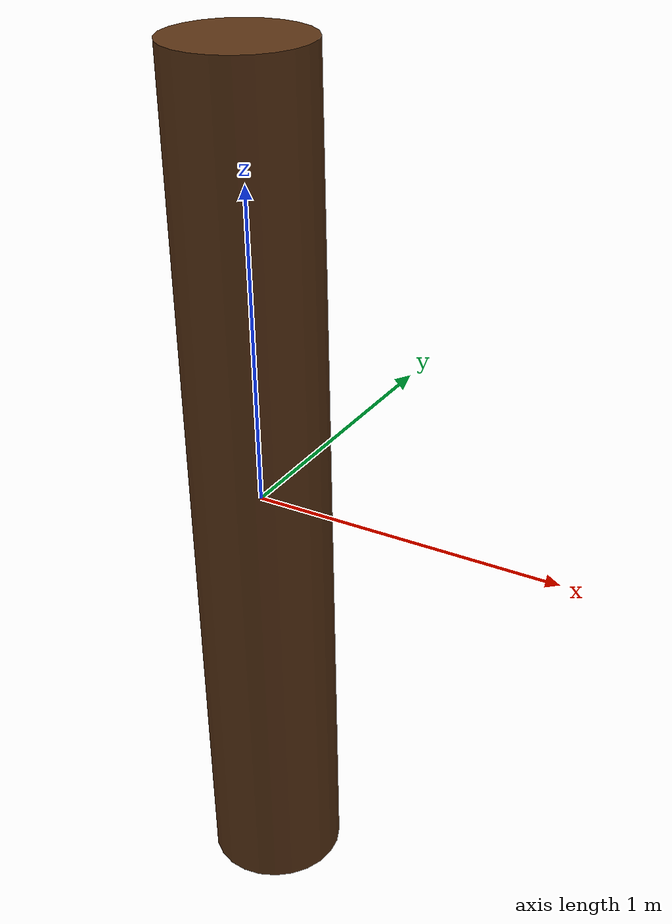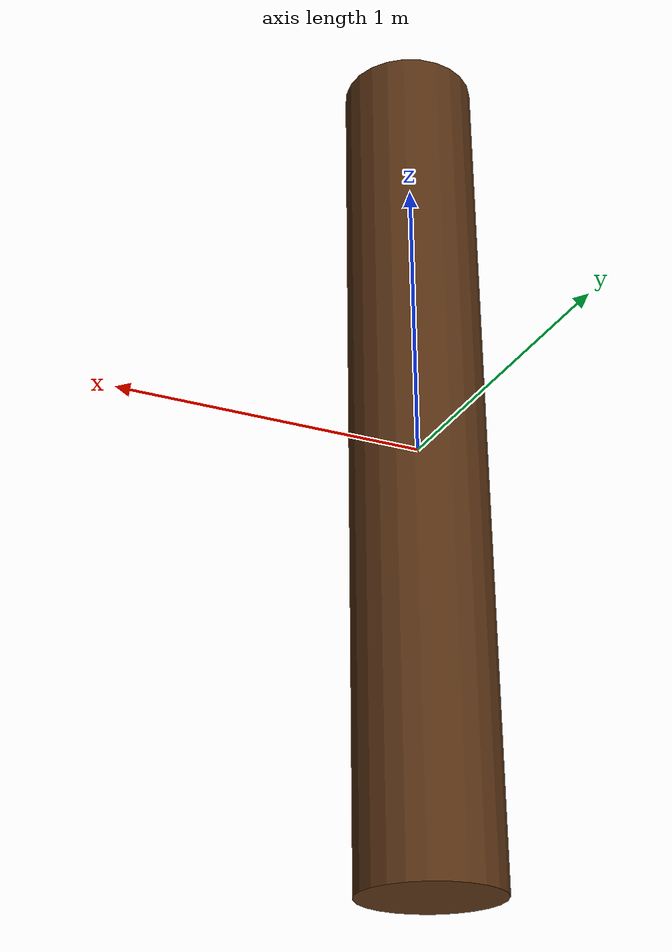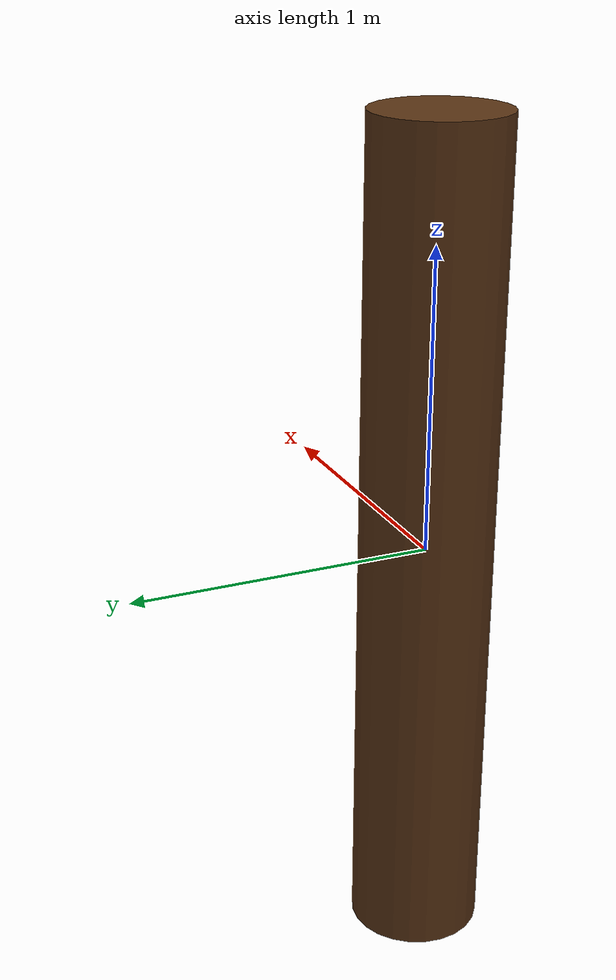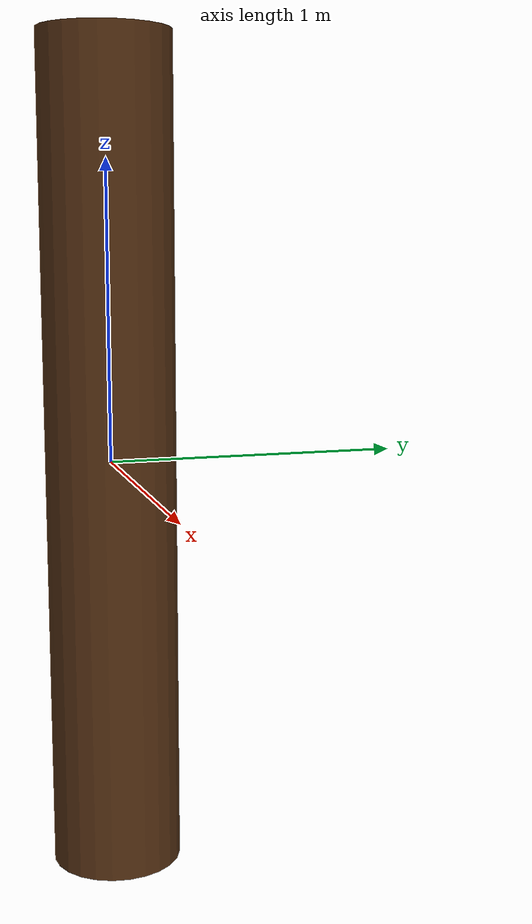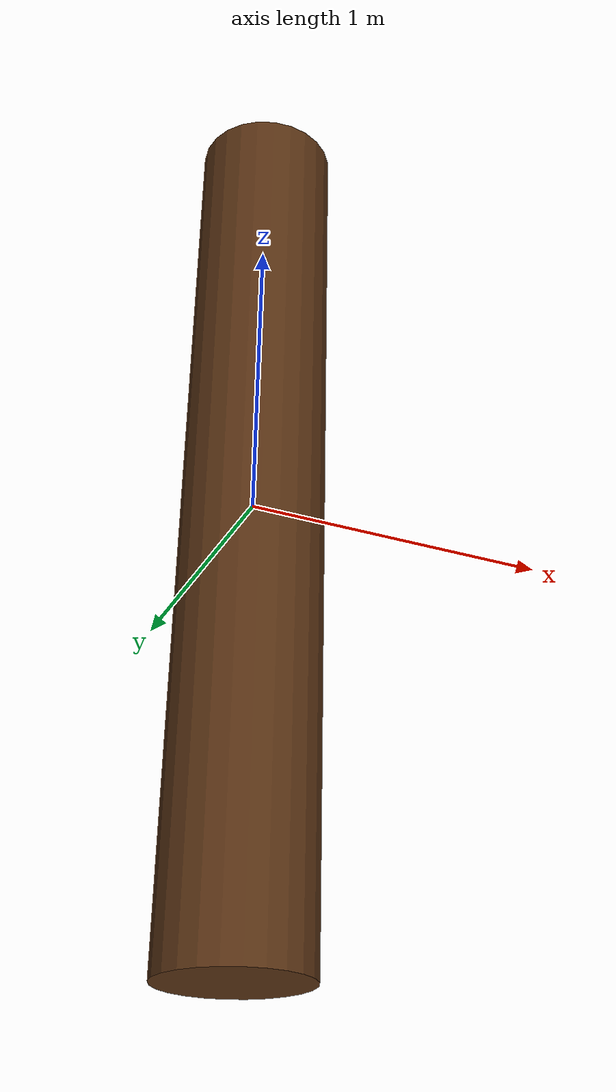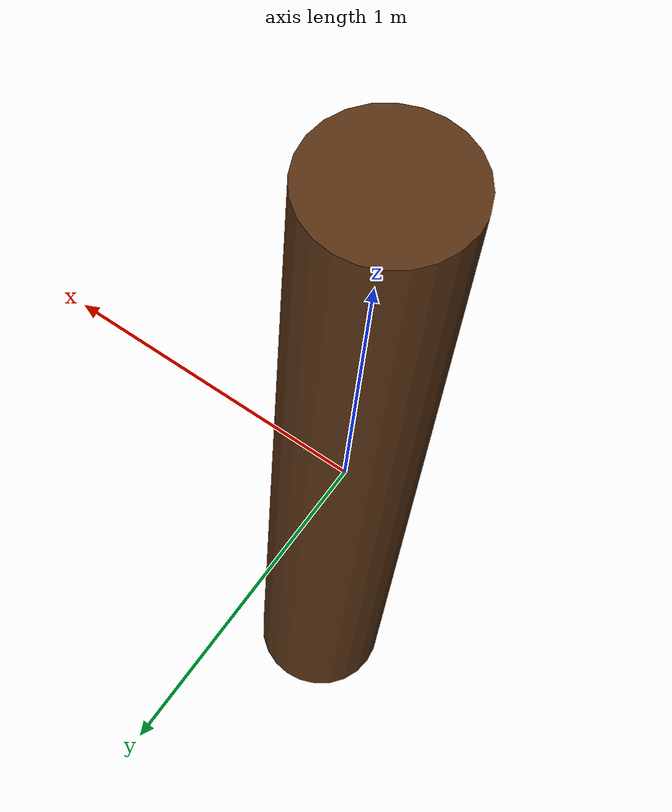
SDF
<?xml version="1.0" ?>
<sdf version="1.9">
  <model name="tree_cylinder">
    <static>true</static>
    <link name="link">
      <collision name="collision">
        <geometry><cylinder><radius>0.22</radius><length>2.8</length></cylinder></geometry>
      </collision>
      <visual name="visual">
        <geometry><cylinder><radius>0.22</radius><length>2.8</length></cylinder></geometry>
        <material>
          <ambient>0.35 0.2 0.08 1</ambient>
          <diffuse>0.35 0.2 0.08 1</diffuse>
        </material>
      </visual>
    </link>
  </model>
</sdf>
